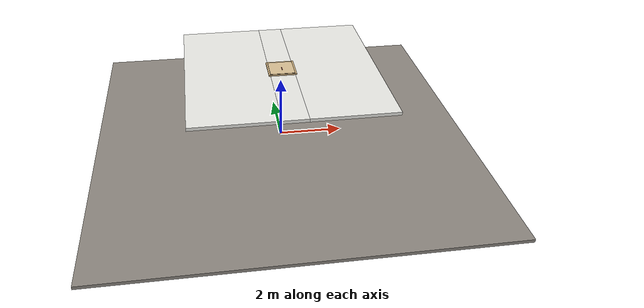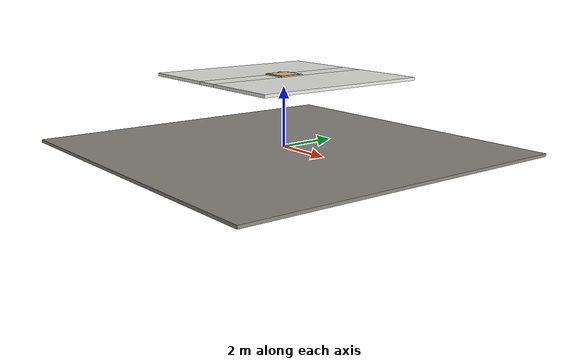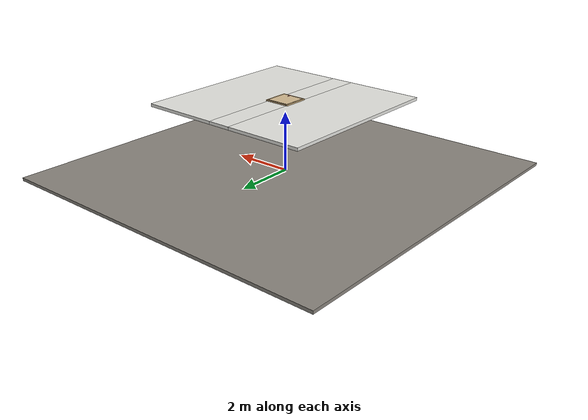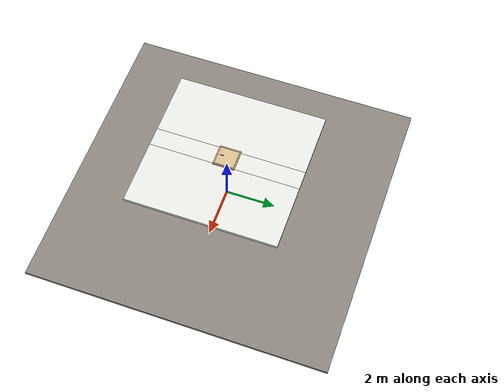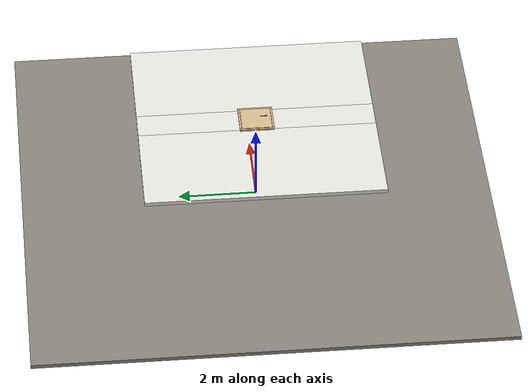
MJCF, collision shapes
<?xml version="1.0" ?>
<mujoco model="db0834_hatch_ceiling_minimal">
  <compiler angle="radian" meshdir="../../hardware" texturedir="../../textures" autolimits="true" inertiafromgeom="false"/>
  <option timestep="0.002" integrator="implicitfast" cone="elliptic" impratio="10" noslip_iterations="3">
    <flag multiccd="enable"/>
  </option>
  <size memory="16M"/>
  <default>
    <geom condim="4" solref="0.005 1" solimp="0.95 0.99 0.001"/>
    <joint solreflimit="0.005 1" solimplimit="0.95 0.99 0.001"/>
    <tendon solreflimit="0.005 1"/>
    <equality solref="0.002 1"/>
  </default>
  <visual>
    <headlight ambient="0.4 0.4 0.4" diffuse="0.7 0.7 0.7" specular="0.2 0.2 0.2"/>
    <quality shadowsize="4096"/>
    <map znear="0.01" zfar="60"/>
  </visual>
  <asset>
    <mesh name="pull_1e5d69a91a" file="pull_1e5d69a91a.obj"/>
    <material name="mat_floor" rgba="0.55 0.53 0.5 1" specular="0.2" shininess="0.15" reflectance="0"/>
    <material name="mat_wall" rgba="0.78 0.76 0.7 1" specular="0.2" shininess="0.1" reflectance="0"/>
    <material name="mat_ceiling" rgba="0.92 0.92 0.9 1" specular="0.2" shininess="0.1" reflectance="0"/>
    <material name="mat_room_wall" rgba="0.86 0.85 0.82 1" specular="0.2" shininess="0.1" reflectance="0"/>
    <material name="mat_frame" rgba="0.82 0.7 0.5 1" specular="0.2" shininess="0.45" reflectance="0"/>
    <material name="mat_leaf" rgba="0.85 0.75 0.58 1" specular="0.2" shininess="0.4" reflectance="0"/>
    <material name="mat_hinge" rgba="0.65 0.66 0.68 1" specular="0.74" shininess="0.5" reflectance="0.36"/>
    <material name="mat_op_stainless" rgba="0.75 0.76 0.77 1" specular="0.8" shininess="0.65" reflectance="0.4"/>
    <material name="mat_strut" rgba="0.75 0.76 0.77 1" specular="0.8" shininess="0.65" reflectance="0.4"/>
    <texture name="skybox" type="skybox" builtin="gradient" rgb1="0.6 0.7 0.85" rgb2="0.9 0.92 0.95" width="256" height="256"/>
  </asset>
  <worldbody>
    <light name="sun" pos="1.5 -2.5 4" dir="-0.3 0.5 -0.8" directional="true" diffuse="0.8 0.8 0.8" specular="0.3 0.3 0.3" castshadow="true"/>
    <light name="fill" pos="-1.5 2.5 3" dir="0.3 -0.5 -0.7" directional="true" diffuse="0.35 0.35 0.4" castshadow="false"/>
    <camera name="robot_view" pos="0 -1.875 3.31" xyaxes="1 0 0 0 0.26963 0.962964" fovy="52"/>
    <camera name="far_view" pos="0 1.875 3.31" xyaxes="-1 0 0 0 -0.26963 0.962964" fovy="52"/>
    <camera name="iso" pos="1.425 -1.575 3.61" xyaxes="0.741536 0.670913 0 -0.242917 0.268487 0.932151" fovy="46"/>
    <camera name="detail_handle" pos="0.35 -0.099 1.0125" xyaxes="0.843661 0.536875 0 0.426006 -0.669439 0.608581" fovy="38"/>
    <geom name="floor" type="box" size="6 6 0.05" pos="0 0 -0.05" material="mat_floor" group="0" contype="1" conaffinity="1" friction="0.8 0.005 0.0001" density="2400"/>
    <geom name="ceil_a" type="box" size="1.3075 3 0.05" pos="-1.6925 0 2.35" material="mat_ceiling" group="0" contype="1" conaffinity="1" friction="0.6 0.005 0.0001" density="600"/>
    <geom name="ceil_b" type="box" size="1.3075 3 0.05" pos="1.6925 0 2.35" material="mat_ceiling" group="0" contype="1" conaffinity="1" friction="0.6 0.005 0.0001" density="600"/>
    <geom name="ceil_c" type="box" size="0.385 1.3075 0.05" pos="0 -1.6925 2.35" material="mat_ceiling" group="0" contype="1" conaffinity="1" friction="0.6 0.005 0.0001" density="600"/>
    <geom name="ceil_d" type="box" size="0.385 1.3075 0.05" pos="0 1.6925 2.35" material="mat_ceiling" group="0" contype="1" conaffinity="1" friction="0.6 0.005 0.0001" density="600"/>
    <geom name="curb_l" type="box" size="0.025 0.435 0.02" pos="-0.41 0 2.42" material="mat_frame" group="0" contype="1" conaffinity="1" friction="0.6 0.005 0.0001" density="7850"/>
    <geom name="curb_r" type="box" size="0.025 0.435 0.02" pos="0.41 0 2.42" material="mat_frame" group="0" contype="1" conaffinity="1" friction="0.6 0.005 0.0001" density="7850"/>
    <geom name="curb_n" type="box" size="0.385 0.025 0.02" pos="0 -0.41 2.42" material="mat_frame" group="0" contype="1" conaffinity="1" friction="0.6 0.005 0.0001" density="7850"/>
    <geom name="curb_f" type="box" size="0.385 0.025 0.02" pos="0 0.41 2.42" material="mat_frame" group="0" contype="1" conaffinity="1" friction="0.6 0.005 0.0001" density="7850"/>
    <site name="approach_point" pos="0 -1.5 0" quat="1 0 0 0" size="0.05" rgba="0.2 0.9 0.2 0.5" group="4"/>
    <site name="goal_point" pos="0 0 2.9" quat="1 0 0 0" size="0.05" rgba="0.2 0.9 0.2 0.5" group="4"/>
    <site name="door_plane_center" pos="0 0 2.4" quat="1 0 0 0" size="0.02" rgba="0.2 0.9 0.2 0.5" group="4"/>
    <body name="hatch" pos="0 0.385 2.44">
      <inertial pos="0 -0.400327 0.002993" mass="6.197344" quat="0.707096 -0.003822 -0.003822 -0.707096" diaginertia="0.27241106 0.288716106 0.556424394"/>
      <joint name="hatch_hinge" type="hinge" axis="-1 0 0" pos="0 0.01 0" limited="true" range="0 1.396263" damping="30.545792" frictionloss="0.175033" stiffness="15.75" springref="-3.333333" armature="0.02"/>
      <geom name="hatch_slab" type="box" size="0.38 0.381 0.006" pos="0 -0.385 0" material="mat_leaf" group="0" contype="1" conaffinity="1" friction="0.6 0.005 0.0001" density="1"/>
      <geom name="hatch_pull_p" type="mesh" mesh="pull_1e5d69a91a" pos="0 -0.5775 0.012" quat="0.707107 -0.707107 0 0" material="mat_op_stainless" group="1" contype="0" conaffinity="0" density="3000"/>
      <geom name="hatch_pull_col_p" type="capsule" size="0.0095 0.08" pos="0 -0.5775 0.072" quat="0.707107 0.707107 0 0" material="mat_op_stainless" group="3" contype="1" conaffinity="1" rgba="0.8 0.3 0.3 0.25" friction="0.7 0.01 0.0001" density="3000"/>
      <site name="hatch_pull_grip_p" pos="0 0.066 -0.5775" quat="1 0 0 0" size="0.012" rgba="0.2 0.9 0.2 0.5" group="4"/>
    </body>
  </worldbody>
  <sensor>
    <jointpos name="hatch_hinge_pos" joint="hatch_hinge"/>
    <jointvel name="hatch_hinge_vel" joint="hatch_hinge"/>
  </sensor>
</mujoco>
